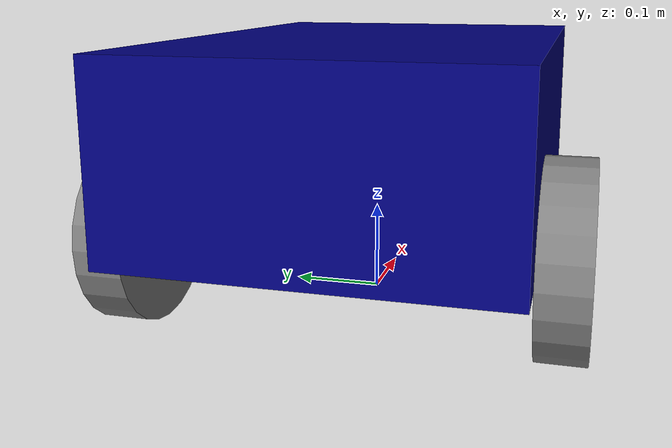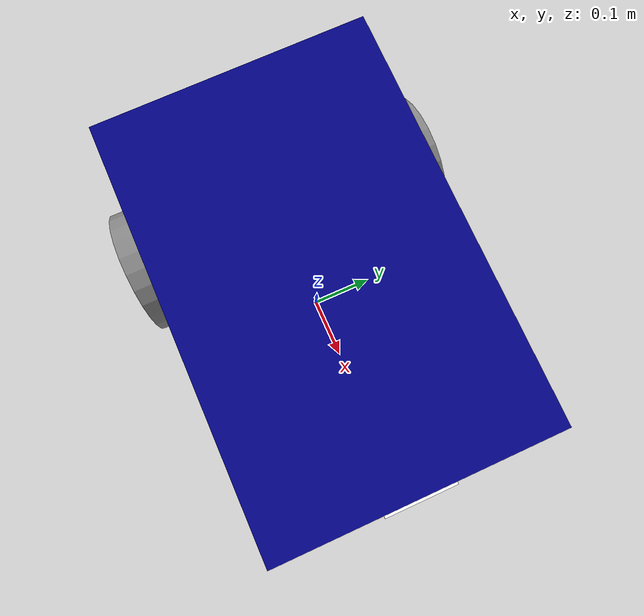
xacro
<?xml version="1.0"?>
<robot name="my_robot" xmlns:xacro="http://www.ros.org/wiki/xacro">

    <!-- ros2 run teleop_twist_keyboard teleop_twist_keyboard
    can be used to control the robot using keyboard -->

    <xacro:include filename="common_properties.xacro" />
    <xacro:include filename="mobile_base.xacro" />
    <xacro:include filename="mobile_base_gazebo.xacro" />
    <xacro:include filename="depth_camera.xacro" />

</robot>

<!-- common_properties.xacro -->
<robot xmlns:xacro="http://www.ros.org/wiki/xacro">

     <material name="red">
        <color rgba="0.5 0 0 1" />
    </material>

    <material name="green">
        <color rgba="0 0.5 0 1" />
    </material>

    <material name="blue">
        <color rgba="0 0 0.5 1" />
    </material>

    <material name="grey">
        <color rgba="0.5 0.5 0.5 1" />
    </material>

    <material name="white">
        <color rgba="1 1 1 1" />
    </material>

    <xacro:macro name="box_inertia" params="m l w h xyz rpy">
        <inertial>
            <origin  xyz="${xyz}" rpy="${rpy}"  />
            <mass  value="${m}"  />
            <inertia ixx="${(m/12) * (h*h + l*l)}" ixy="0" ixz="0"
                     iyy="${(m/12) * (w*w + l*l)}" iyz="0"
                     izz="${(m/12) * (w*w + h*h)}" />
        </inertial>
    </xacro:macro>

    <xacro:macro name="wheel_inertia" params="m r h xyz rpy">
        <inertial>
            <origin  xyz="${xyz}" rpy="${rpy}"  />
            <mass  value="${m}"  />
            <inertia ixx="${(m/12) * (3*r*r + h*h)}" ixy="0" ixz="0"
                     iyy="${(m/12) * (3*r*r + h*h)}" iyz="0"
                     izz="${(m/2) * (r*r)}" />
        </inertial>
    </xacro:macro>

    <xacro:macro name="caster_wheel_inertia" params="m r xyz rpy">
        <inertial>
            <origin  xyz="${xyz}" rpy="${rpy}"  />
            <mass  value="${m}"  />
            <inertia ixx="${(2/5) * (m*r*r)}" ixy="0" ixz="0"
                     iyy="${(2/5) * (m*r*r)}" iyz="0"
                     izz="${(2/5) * (m*r*r)}" />
        </inertial>
    </xacro:macro>
</robot>

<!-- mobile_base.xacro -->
<robot xmlns:xacro="http://www.ros.org/wiki/xacro">

    <xacro:property name="base_length" value="0.6" />
    <xacro:property name="base_width" value="0.4" />
    <xacro:property name="base_height" value="0.2" />
    <xacro:property name="wheel_radius" value="0.1" />
    <xacro:property name="wheel_length" value="0.05" />
    <xacro:property name="caster_wheel_radius" value="${wheel_radius/2.0}" />
    <xacro:property name="multiplying_factor" value="2" />

    <xacro:macro name="wheel_link" params="prefix">
        <link name="${prefix}_wheel_link">
            <visual>
                <geometry>
                    <cylinder radius="${wheel_radius}" length="${wheel_length}" />
                </geometry>
                <origin xyz="0 0 0" rpy="${pi/2.0} 0 0" />
                <material name="grey" />
            </visual>

            <collision>
                <geometry>
                    <cylinder radius="${wheel_radius}" length="${wheel_length}" />
                </geometry>
                <origin xyz="0 0 0" rpy="${pi/2.0} 0 0" />
            </collision>

            <xacro:wheel_inertia m="1.0" r="${multiplying_factor * wheel_radius}" h="${multiplying_factor * wheel_length}"
                                 xyz="0 0 0" rpy="${pi/2.0} 0 0" />
        </link>
    </xacro:macro>

    <link name="base_footprint" > </link>

    <link name="base_link">
        <visual>
            <geometry>
                <box size="${base_length} ${base_width} ${base_height}" />
            </geometry>
            <origin xyz="0 0 ${base_height/2.0}" rpy="0 0 0" />
            <material name="blue" />
        </visual>

        <collision>
            <geometry>
                <box size="${base_length} ${base_width} ${base_height}" />
            </geometry>
            <origin xyz="0 0 ${base_height/2.0}" rpy="0 0 0" />
        </collision>

        <xacro:box_inertia m="5.0" l="${multiplying_factor * base_length}" w="${multiplying_factor *  base_width}" h="${multiplying_factor *  base_height}"
                           xyz="0 0 ${base_height/2.0}" rpy="0 0 0"/>
    </link>

     <joint name="base_footprint_joint" type="fixed">
        <parent link="base_footprint" />
        <child link="base_link" />
        <origin xyz="0 0 ${wheel_radius}" rpy="0 0 0" />
    </joint>

    <xacro:wheel_link prefix="right" />
    <xacro:wheel_link prefix="left" />

    <joint name="base_right_wheel_joint" type="continuous">
        <parent link="base_link" />
        <child link="right_wheel_link" />
        <origin xyz="${-base_length/4.0} ${-(base_width + wheel_length)/2.0} 0" rpy="0 0 0" />
        <axis xyz="0 1 0" />
    </joint>

    <joint name="base_left_wheel_joint" type="continuous">
        <parent link="base_link" />
        <child link="left_wheel_link" />
        <origin xyz="${-base_length/4.0} ${(base_width + wheel_length)/2.0} 0" rpy="0 0 0" />
        <axis xyz="0 1 0" />
    </joint>

    <link name="caster_wheel_link">
        <visual>
            <geometry>
                <sphere radius="${caster_wheel_radius}" />
            </geometry>
            <origin xyz="0 0 0" rpy="0 0 0" />
            <material name="grey" />
        </visual>

        <collision>
            <geometry>
                <sphere radius="${caster_wheel_radius}" />
            </geometry>
            <origin xyz="0 0 0" rpy="0 0 0" />
        </collision>

        <xacro:caster_wheel_inertia m="0.5" r="${multiplying_factor * caster_wheel_radius}"
                                 xyz="0 0 0" rpy="0 0 0" />
    </link>

    <joint name="base_caster_wheel_joint" type="fixed">
        <parent link="base_link" />
        <child link="caster_wheel_link" />
        <origin xyz="${base_length/3.0} 0 ${-caster_wheel_radius}" rpy="0 0 0" />
    </joint>

</robot>

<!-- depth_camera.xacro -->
<robot xmlns:xacro="http://www.ros.org/wiki/xacro">

    <xacro:property name="camera_length" value="0.01" />
    <xacro:property name="camera_width" value="0.1" />
    <xacro:property name="camera_height" value="0.05" />

    <xacro:property name="H_FOV" value="1.3962634" />
    <xacro:property name="image_width" value="800" /> <!-- in pixels -->
    <xacro:property name="image_height" value="400" /> <!-- in pixels -->
    <xacro:property name="clip_near" value="0.05" /> <!-- in meters -->
    <xacro:property name="clip_far" value="100" /> <!-- in meters -->

    <!--depth-->
    <xacro:property name="image_format" value="B8G8R8" />
    <xacro:property name="min_depth" value="0.1" />
    <xacro:property name="max_depth" value="100" />

    <!--Noise-->

    <link name="camera_link">
        <visual>
            <geometry>
                <box size="${camera_length} ${camera_width} ${camera_height} " />
            </geometry>
            <material name="white"></material>
            <origin xyz="0 0 0" rpy="0 0 0" />
        </visual>

        <collision>
            <geometry>
                <box size="${camera_length} ${camera_width} ${camera_height} " />
            </geometry>
            <origin xyz="0 0 0" rpy="0 0 0" />
        </collision>

        <xacro:box_inertia m="0.1" l="${camera_length}" w="${camera_width}" h="${camera_height}"
                           xyz="0 0 0" rpy="0 0 0" />
    </link>

     <joint name="base_camera_joint" type="fixed">
        <parent link="base_link" />
        <child link="camera_link" />
        <origin xyz="${(camera_length + base_length)/2.0} 0 ${3.0*(base_height)/4.0}" rpy="0 0 0" />
    </joint>

    <link name="camera_link_optical"></link>

    <joint name="camera_optical_joint" type="fixed">
        <parent link="camera_link" />
        <child link="camera_link_optical" />
        <origin xyz="0 0 0" rpy="${-pi/2} 0 ${-pi/2}" />
    </joint>

    <gazebo reference="camera_link">
        <material>Gazebo/White</material>
        <sensor name="camera_sensor" type="depth">
            <pose>0 0 0 0 0 0</pose>
            <visualize>true</visualize>
            <update_rate>10.0</update_rate>
            <camera name="head">
                <horizontal_fov>${H_FOV}</horizontal_fov>
                <image>
                    <width>${image_width}</width>
                    <height>${image_height}</height>
                    <format>${image_format}</format>
                </image>
                <clip>
                   <near>${clip_near}</near>
                   <far>${clip_far}</far>
                </clip>
            </camera>
            <plugin name="camera_controller" filename="libgazebo_ros_camera.so" >
                <frame_name>camera_link_optical</frame_name> <!-- camera link name -->
                <min_depth>${min_depth}</min_depth>
                <max_depth>${max_depth}</max_depth>
            </plugin>
        </sensor>
    </gazebo>

</robot>
